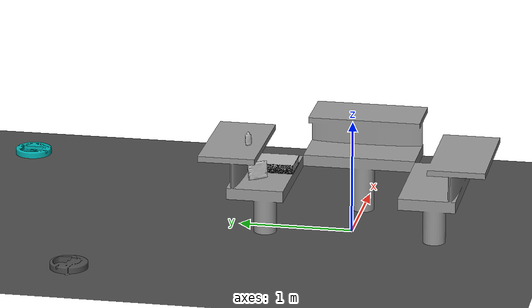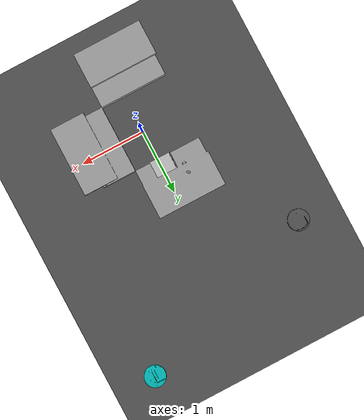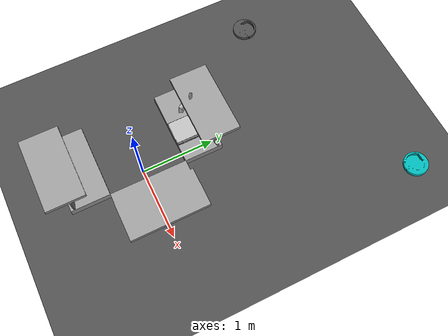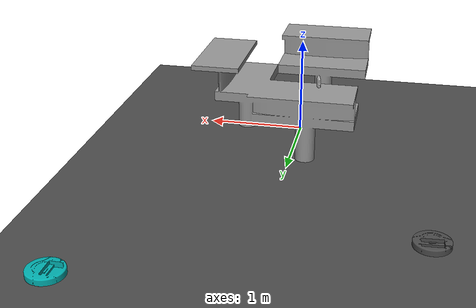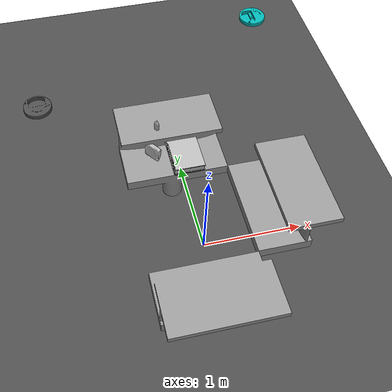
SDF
<sdf version="1.6">
 <world name="default">
  <model name="ground_plane">
   <static>1</static>
   <link name="link">
    <collision name="collision">
     <geometry><plane><normal>0 0 1</normal><size>100 100</size></plane></geometry>
     <surface><friction><ode><mu>100</mu><mu2>50</mu2></ode></friction></surface>
    </collision>
    <visual name="visual">
     <cast_shadows>0</cast_shadows>
     <geometry><plane><normal>0 0 1</normal><size>100 100</size></plane></geometry>
     <material>
      <script><uri>file://media/materials/scripts/gazebo.material</uri><name>Gazebo/DarkGrey</name></script>
     </material>
    </visual>
   </link>
  </model>
  <model name="twin_table">
   <link name="link_0">
    <pose>0.000466 -0 0 0 -0 0</pose>
    <inertial>
     <mass>1</mass>
     <inertia>
      <ixx>0.166667</ixx>
      <ixy>0</ixy>
      <ixz>0</ixz>
      <iyy>0.166667</iyy>
      <iyz>0</iyz>
      <izz>0.166667</izz>
     </inertia>
    </inertial>
    <visual name="visual">
     <geometry><mesh><uri>model://twin_table/meshes/twin_table.dae</uri><scale>1 1 1</scale></mesh></geometry>
     <material>
      <lighting>1</lighting>
      <script><uri>file://media/materials/scripts/gazebo.material</uri><name>Gazebo/Grey</name></script>
      <ambient>0.3 0.3 0.3 1</ambient>
      <diffuse>0.7 0.7 0.7 1</diffuse>
      <specular>0.01 0.01 0.01 1</specular>
      <emissive>0 0 0 1</emissive>
     </material>
    </visual>
    <collision name="collision">
     <geometry><mesh><uri>model://twin_table/meshes/twin_table.dae</uri><scale>1 1 1</scale></mesh></geometry>
     <surface>
      <friction>
       <ode><mu>1</mu><mu2>1</mu2><fdir1>0 0 0</fdir1><slip1>0</slip1><slip2>0</slip2></ode>
       <torsional>
        <coefficient>1</coefficient>
        <patch_radius>0</patch_radius>
        <surface_radius>0</surface_radius>
        <use_patch_radius>1</use_patch_radius>
        <ode><slip>0</slip></ode>
       </torsional>
      </friction>
      <bounce><restitution_coefficient>0</restitution_coefficient><threshold>1e+06</threshold></bounce>
      <contact>
       <collide_without_contact>0</collide_without_contact>
       <collide_without_contact_bitmask>1</collide_without_contact_bitmask>
       <collide_bitmask>1</collide_bitmask>
       <ode>
        <soft_cfm>0</soft_cfm>
        <soft_erp>0.2</soft_erp>
        <kp>1e+13</kp>
        <kd>1</kd>
        <max_vel>0.01</max_vel>
        <min_depth>0</min_depth>
       </ode>
       <bullet>
        <split_impulse>1</split_impulse>
        <split_impulse_penetration_threshold>-0.01</split_impulse_penetration_threshold>
        <soft_cfm>0</soft_cfm>
        <soft_erp>0.2</soft_erp>
        <kp>1e+13</kp>
        <kd>1</kd>
       </bullet>
      </contact>
     </surface>
    </collision>
   </link>
   <static>1</static>
   <pose>0.6 0 0 0 -0 3.14</pose>
  </model>
  <model name="biscuits">
   <link name="biscuits_link">
    <inertial>
     <mass>0.1</mass>
     <inertia><ixx>1</ixx><ixy>0</ixy><ixz>0</ixz><iyy>1</iyy><iyz>0</iyz><izz>1</izz></inertia>
    </inertial>
    <visual name="biscuits_visual">
     <material>
      <script>
       <uri>model://biscuits/materials/scripts</uri>
       <uri>model://biscuits/materials/textures</uri>
       <name>biscuits</name>
      </script>
     </material>
     <geometry><mesh><uri>model://biscuits/meshes/biscuits.dae</uri></mesh></geometry>
    </visual>
    <collision name="biscuits_collision">
     <pose>0.015 0.01 0.075 0 -0 2.2</pose>
     <geometry><box><size>0.19 0.06 0.15</size></box></geometry>
    </collision>
   </link>
   <pose>-0.354477 0.779024 0.549995 1e-06 -3e-06 0</pose>
  </model>
  <model name="book">
   <link name="book_link">
    <inertial>
     <mass>0.08</mass>
     <inertia><ixx>1</ixx><ixy>0</ixy><ixz>0</ixz><iyy>1</iyy><iyz>0</iyz><izz>1</izz></inertia>
    </inertial>
    <visual name="book_visual">
     <material>
      <script>
       <uri>model://book/materials/scripts</uri>
       <uri>model://book/materials/textures</uri>
       <name>book</name>
      </script>
     </material>
     <geometry><mesh><uri>model://book/meshes/book.dae</uri></mesh></geometry>
    </visual>
    <collision name="book_collision">
     <pose>0 0 0.103 0 -0 2.3</pose>
     <geometry><box><size>0.13 0.02 0.206</size></box></geometry>
    </collision>
   </link>
   <pose>-0.031656 0.70927 0.549996 4e-06 -5e-06 -0.000101</pose>
  </model>
  <model name="glue">
   <link name="glue_link">
    <inertial>
     <mass>0.08</mass>
     <inertia><ixx>1</ixx><ixy>0</ixy><ixz>0</ixz><iyy>1</iyy><iyz>0</iyz><izz>1</izz></inertia>
    </inertial>
    <visual name="glue_visual">
     <material>
      <script>
       <uri>model://glue/materials/scripts</uri>
       <uri>model://glue/materials/textures</uri>
       <name>glue</name>
      </script>
     </material>
     <geometry><mesh><uri>model://glue/meshes/glue.dae</uri></mesh></geometry>
    </visual>
    <collision name="glue_collision">
     <pose>0 0 0.067 0 0 -0.95</pose>
     <geometry><box><size>0.054 0.032 0.133</size></box></geometry>
    </collision>
   </link>
   <pose>-0.286334 0.875759 0.824491 -7e-06 0 0</pose>
  </model>
  <model name="create">
   <link name="base">
    <inertial>
     <pose>0.001453 -0.000453 0.029787 0 -0 0</pose>
     <inertia>
      <ixx>0.05864</ixx>
      <ixy>0.000124</ixy>
      <ixz>0.000615</ixz>
      <iyy>0.058786</iyy>
      <iyz>1.4e-05</iyz>
      <izz>1.53244</izz>
     </inertia>
     <mass>2.234</mass>
    </inertial>
    <collision name="base_collision">
     <pose>0 0 0.0478 0 -0 0</pose>
     <geometry><cylinder><radius>0.016495</radius><length>0.061163</length></cylinder></geometry>
    </collision>
    <visual name="base_visual">
     <pose>0 0 0.0478 0 -0 0</pose>
     <geometry><mesh><uri>model://create/meshes/create_body.dae</uri></mesh></geometry>
     <material>
      <lighting>1</lighting>
      <script><uri>file://media/materials/scripts/gazebo.material</uri><name>Gazebo/Grey</name></script>
      <ambient>0 0.3 0.3 1</ambient>
      <diffuse>0 0.7 0.7 1</diffuse>
      <specular>0 0.01 0.01 1</specular>
      <emissive>0 0 0 1</emissive>
     </material>
    </visual>
    <collision name="front_wheel_collision">
     <pose>0.13 0 0.017 -0 1.5707 1.5707</pose>
     <geometry><sphere><radius>0.018</radius></sphere></geometry>
     <surface>
      <friction><ode><mu>0</mu><mu2>0</mu2><fdir1>0 0 0</fdir1><slip1>0</slip1><slip2>0</slip2></ode></friction>
     </surface>
    </collision>
    <visual name="front_wheel_visual">
     <pose>0.13 0 0.017 -0 1.5707 1.5707</pose>
     <geometry><sphere><radius>0.009</radius></sphere></geometry>
    </visual>
    <collision name="rear_wheel_collision">
     <pose>-0.13 0 0.017 -0 1.5707 1.5707</pose>
     <geometry><sphere><radius>0.015</radius></sphere></geometry>
     <surface>
      <friction><ode><mu>0</mu><mu2>0</mu2><fdir1>0 0 0</fdir1><slip1>0</slip1><slip2>0</slip2></ode></friction>
     </surface>
    </collision>
    <visual name="rear_wheel_visual">
     <pose>-0.13 0 0.017 -0 1.5707 1.5707</pose>
     <geometry><sphere><radius>0.0075</radius></sphere></geometry>
    </visual>
    <sensor name="left_cliff_sensor" type="ray">
     <pose>0.07 0.14 0.027 0 1.57079 0</pose>
     <ray>
      <scan>
       <horizontal>
        <samples>1</samples>
        <resolution>1</resolution>
        <min_angle>0</min_angle>
        <max_angle>0</max_angle>
       </horizontal>
       <vertical><samples>1</samples><min_angle>0</min_angle><max_angle>0</max_angle></vertical>
      </scan>
      <range><min>0.01</min><max>0.04</max><resolution>0.1</resolution></range>
     </ray>
    </sensor>
    <sensor name="leftfront_cliff_sensor" type="ray">
     <pose>0.15 0.04 0.027 0 1.57079 0</pose>
     <ray>
      <scan>
       <horizontal>
        <samples>1</samples>
        <resolution>1</resolution>
        <min_angle>0</min_angle>
        <max_angle>0</max_angle>
       </horizontal>
       <vertical><samples>1</samples><min_angle>0</min_angle><max_angle>0</max_angle></vertical>
      </scan>
      <range><min>0.01</min><max>0.04</max><resolution>0.1</resolution></range>
     </ray>
    </sensor>
    <sensor name="right_cliff_sensor" type="ray">
     <pose>0.07 -0.14 0.027 0 1.57079 0</pose>
     <ray>
      <scan>
       <horizontal>
        <samples>1</samples>
        <resolution>1</resolution>
        <min_angle>0</min_angle>
        <max_angle>0</max_angle>
       </horizontal>
       <vertical><samples>1</samples><min_angle>0</min_angle><max_angle>0</max_angle></vertical>
      </scan>
      <range><min>0.01</min><max>0.04</max><resolution>0.1</resolution></range>
     </ray>
    </sensor>
    <sensor name="rightfront_cliff_sensor" type="ray">
     <pose>0.15 -0.04 0.027 0 1.57079 0</pose>
     <ray>
      <scan>
       <horizontal>
        <samples>1</samples>
        <resolution>1</resolution>
        <min_angle>0</min_angle>
        <max_angle>0</max_angle>
       </horizontal>
       <vertical><samples>1</samples><min_angle>0</min_angle><max_angle>0</max_angle></vertical>
      </scan>
      <range><min>0.01</min><max>0.04</max><resolution>0.1</resolution></range>
     </ray>
    </sensor>
    <sensor name="wall_sensor" type="ray">
     <pose>0.09 -0.12 0.059 0 0 -1</pose>
     <ray>
      <scan>
       <horizontal>
        <samples>1</samples>
        <resolution>1</resolution>
        <min_angle>0</min_angle>
        <max_angle>0</max_angle>
       </horizontal>
       <vertical><samples>1</samples><min_angle>0</min_angle><max_angle>0</max_angle></vertical>
      </scan>
      <range><min>0.016</min><max>0.04</max><resolution>0.1</resolution></range>
     </ray>
    </sensor>
   </link>
   <link name="left_wheel">
    <pose>0 0.13 0.032 0 -0 0</pose>
    <inertial>
     <inertia><ixx>0.001</ixx><ixy>0</ixy><ixz>0</ixz><iyy>0.001</iyy><iyz>0</iyz><izz>0.001</izz></inertia>
     <mass>0.01</mass>
    </inertial>
    <collision name="collision">
     <pose>0 0 0 -0 1.5707 1.5707</pose>
     <geometry><cylinder><radius>0.033</radius><length>0.023</length></cylinder></geometry>
     <surface>
      <friction><ode><mu>10</mu><mu2>10</mu2><fdir1>0 0 0</fdir1><slip1>0</slip1><slip2>0</slip2></ode></friction>
     </surface>
    </collision>
    <visual name="visual">
     <pose>0 0 0 -0 1.5707 1.5707</pose>
     <geometry><cylinder><radius>0.033</radius><length>0.023</length></cylinder></geometry>
    </visual>
   </link>
   <link name="right_wheel">
    <pose>0 -0.13 0.032 0 -0 0</pose>
    <inertial>
     <inertia><ixx>0.001</ixx><ixy>0</ixy><ixz>0</ixz><iyy>0.001</iyy><iyz>0</iyz><izz>0.001</izz></inertia>
     <mass>0.01</mass>
    </inertial>
    <collision name="collision">
     <pose>0 0 0 -0 1.5707 1.5707</pose>
     <geometry><cylinder><radius>0.033</radius><length>0.023</length></cylinder></geometry>
     <surface>
      <friction><ode><mu>10</mu><mu2>10</mu2><fdir1>0 0 0</fdir1><slip1>0</slip1><slip2>0</slip2></ode></friction>
     </surface>
    </collision>
    <visual name="visual">
     <pose>0 0 0 -0 1.5707 1.5707</pose>
     <geometry><cylinder><radius>0.033</radius><length>0.023</length></cylinder></geometry>
    </visual>
   </link>
   <joint name="left_wheel" type="revolute">
    <parent>base</parent>
    <child>left_wheel</child>
    <axis>
     <xyz>0 1 0</xyz>
     <use_parent_model_frame>1</use_parent_model_frame>
     <limit><lower>-1e+16</lower><upper>1e+16</upper></limit>
     <dynamics><spring_reference>0</spring_reference><spring_stiffness>0</spring_stiffness></dynamics>
    </axis>
   </joint>
   <joint name="right_wheel" type="revolute">
    <parent>base</parent>
    <child>right_wheel</child>
    <axis>
     <xyz>0 1 0</xyz>
     <use_parent_model_frame>1</use_parent_model_frame>
     <limit><lower>-1e+16</lower><upper>1e+16</upper></limit>
     <dynamics><spring_reference>0</spring_reference><spring_stiffness>0</spring_stiffness></dynamics>
    </axis>
   </joint>
   <pose>1.52403 3.26371 0.000942 -6.6e-05 -0.00061 -0.006329</pose>
  </model>
  <model name="create_0">
   <link name="base">
    <inertial>
     <pose>0.001453 -0.000453 0.029787 0 -0 0</pose>
     <inertia>
      <ixx>0.05864</ixx>
      <ixy>0.000124</ixy>
      <ixz>0.000615</ixz>
      <iyy>0.058786</iyy>
      <iyz>1.4e-05</iyz>
      <izz>1.53244</izz>
     </inertia>
     <mass>2.234</mass>
    </inertial>
    <collision name="base_collision">
     <pose>0 0 0.0478 0 -0 0</pose>
     <geometry><cylinder><radius>0.016495</radius><length>0.061163</length></cylinder></geometry>
    </collision>
    <visual name="base_visual">
     <pose>0 0 0.0478 0 -0 0</pose>
     <geometry><mesh><uri>model://create/meshes/create_body.dae</uri></mesh></geometry>
     <material>
      <lighting>1</lighting>
      <script><uri>file://media/materials/scripts/gazebo.material</uri><name>Gazebo/DarkGrey</name></script>
     </material>
    </visual>
    <collision name="front_wheel_collision">
     <pose>0.13 0 0.017 -0 1.5707 1.5707</pose>
     <geometry><sphere><radius>0.018</radius></sphere></geometry>
     <surface>
      <friction><ode><mu>0</mu><mu2>0</mu2><fdir1>0 0 0</fdir1><slip1>0</slip1><slip2>0</slip2></ode></friction>
     </surface>
    </collision>
    <visual name="front_wheel_visual">
     <pose>0.13 0 0.017 -0 1.5707 1.5707</pose>
     <geometry><sphere><radius>0.009</radius></sphere></geometry>
    </visual>
    <collision name="rear_wheel_collision">
     <pose>-0.13 0 0.017 -0 1.5707 1.5707</pose>
     <geometry><sphere><radius>0.015</radius></sphere></geometry>
     <surface>
      <friction><ode><mu>0</mu><mu2>0</mu2><fdir1>0 0 0</fdir1><slip1>0</slip1><slip2>0</slip2></ode></friction>
     </surface>
    </collision>
    <visual name="rear_wheel_visual">
     <pose>-0.13 0 0.017 -0 1.5707 1.5707</pose>
     <geometry><sphere><radius>0.0075</radius></sphere></geometry>
    </visual>
    <sensor name="left_cliff_sensor" type="ray">
     <pose>0.07 0.14 0.027 0 1.57079 0</pose>
     <ray>
      <scan>
       <horizontal>
        <samples>1</samples>
        <resolution>1</resolution>
        <min_angle>0</min_angle>
        <max_angle>0</max_angle>
       </horizontal>
       <vertical><samples>1</samples><min_angle>0</min_angle><max_angle>0</max_angle></vertical>
      </scan>
      <range><min>0.01</min><max>0.04</max><resolution>0.1</resolution></range>
     </ray>
    </sensor>
    <sensor name="leftfront_cliff_sensor" type="ray">
     <pose>0.15 0.04 0.027 0 1.57079 0</pose>
     <ray>
      <scan>
       <horizontal>
        <samples>1</samples>
        <resolution>1</resolution>
        <min_angle>0</min_angle>
        <max_angle>0</max_angle>
       </horizontal>
       <vertical><samples>1</samples><min_angle>0</min_angle><max_angle>0</max_angle></vertical>
      </scan>
      <range><min>0.01</min><max>0.04</max><resolution>0.1</resolution></range>
     </ray>
    </sensor>
    <sensor name="right_cliff_sensor" type="ray">
     <pose>0.07 -0.14 0.027 0 1.57079 0</pose>
     <ray>
      <scan>
       <horizontal>
        <samples>1</samples>
        <resolution>1</resolution>
        <min_angle>0</min_angle>
        <max_angle>0</max_angle>
       </horizontal>
       <vertical><samples>1</samples><min_angle>0</min_angle><max_angle>0</max_angle></vertical>
      </scan>
      <range><min>0.01</min><max>0.04</max><resolution>0.1</resolution></range>
     </ray>
    </sensor>
    <sensor name="rightfront_cliff_sensor" type="ray">
     <pose>0.15 -0.04 0.027 0 1.57079 0</pose>
     <ray>
      <scan>
       <horizontal>
        <samples>1</samples>
        <resolution>1</resolution>
        <min_angle>0</min_angle>
        <max_angle>0</max_angle>
       </horizontal>
       <vertical><samples>1</samples><min_angle>0</min_angle><max_angle>0</max_angle></vertical>
      </scan>
      <range><min>0.01</min><max>0.04</max><resolution>0.1</resolution></range>
     </ray>
    </sensor>
    <sensor name="wall_sensor" type="ray">
     <pose>0.09 -0.12 0.059 0 0 -1</pose>
     <ray>
      <scan>
       <horizontal>
        <samples>1</samples>
        <resolution>1</resolution>
        <min_angle>0</min_angle>
        <max_angle>0</max_angle>
       </horizontal>
       <vertical><samples>1</samples><min_angle>0</min_angle><max_angle>0</max_angle></vertical>
      </scan>
      <range><min>0.016</min><max>0.04</max><resolution>0.1</resolution></range>
     </ray>
    </sensor>
   </link>
   <link name="left_wheel">
    <pose>0 0.13 0.032 0 -0 0</pose>
    <inertial>
     <inertia><ixx>0.001</ixx><ixy>0</ixy><ixz>0</ixz><iyy>0.001</iyy><iyz>0</iyz><izz>0.001</izz></inertia>
     <mass>0.01</mass>
    </inertial>
    <collision name="collision">
     <pose>0 0 0 -0 1.5707 1.5707</pose>
     <geometry><cylinder><radius>0.033</radius><length>0.023</length></cylinder></geometry>
     <surface>
      <friction><ode><mu>10</mu><mu2>10</mu2><fdir1>0 0 0</fdir1><slip1>0</slip1><slip2>0</slip2></ode></friction>
     </surface>
    </collision>
    <visual name="visual">
     <pose>0 0 0 -0 1.5707 1.5707</pose>
     <geometry><cylinder><radius>0.033</radius><length>0.023</length></cylinder></geometry>
    </visual>
   </link>
   <link name="right_wheel">
    <pose>0 -0.13 0.032 0 -0 0</pose>
    <inertial>
     <inertia><ixx>0.001</ixx><ixy>0</ixy><ixz>0</ixz><iyy>0.001</iyy><iyz>0</iyz><izz>0.001</izz></inertia>
     <mass>0.01</mass>
    </inertial>
    <collision name="collision">
     <pose>0 0 0 -0 1.5707 1.5707</pose>
     <geometry><cylinder><radius>0.033</radius><length>0.023</length></cylinder></geometry>
     <surface>
      <friction><ode><mu>10</mu><mu2>10</mu2><fdir1>0 0 0</fdir1><slip1>0</slip1><slip2>0</slip2></ode></friction>
     </surface>
    </collision>
    <visual name="visual">
     <pose>0 0 0 -0 1.5707 1.5707</pose>
     <geometry><cylinder><radius>0.033</radius><length>0.023</length></cylinder></geometry>
    </visual>
   </link>
   <joint name="left_wheel" type="revolute">
    <parent>base</parent>
    <child>left_wheel</child>
    <axis>
     <xyz>0 1 0</xyz>
     <use_parent_model_frame>1</use_parent_model_frame>
     <limit><lower>-1e+16</lower><upper>1e+16</upper></limit>
     <dynamics><spring_reference>0</spring_reference><spring_stiffness>0</spring_stiffness></dynamics>
    </axis>
   </joint>
   <joint name="right_wheel" type="revolute">
    <parent>base</parent>
    <child>right_wheel</child>
    <axis>
     <xyz>0 1 0</xyz>
     <use_parent_model_frame>1</use_parent_model_frame>
     <limit><lower>-1e+16</lower><upper>1e+16</upper></limit>
     <dynamics><spring_reference>0</spring_reference><spring_stiffness>0</spring_stiffness></dynamics>
    </axis>
   </joint>
   <pose>-1.42125 2.21994 0.000936 -6.6e-05 -0.000494 -1.50558</pose>
  </model>
 </world>
</sdf>
